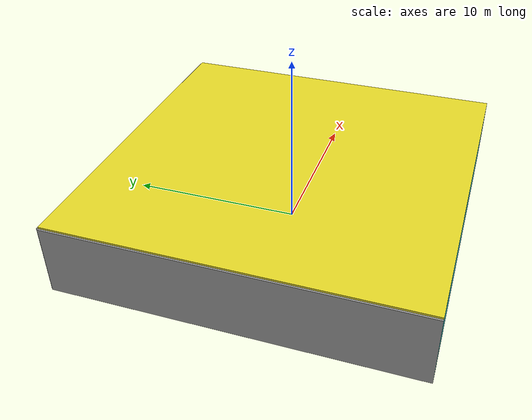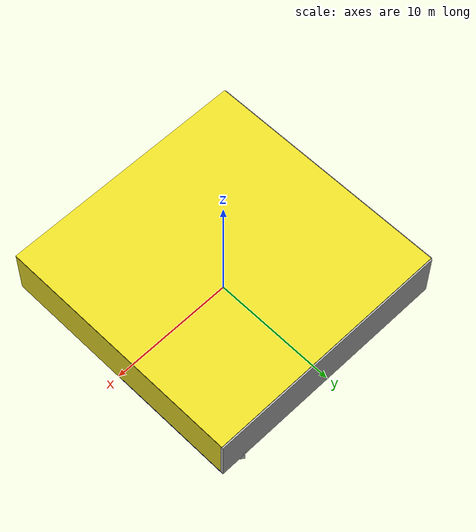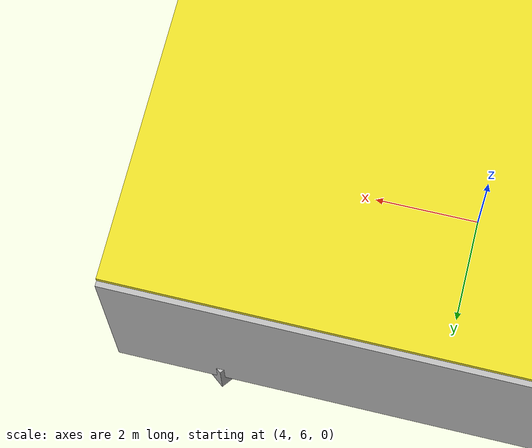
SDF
<sdf version="1.4">
 <world name="default">
  <physics type="ode">
   <max_step_size>0.001</max_step_size>
   <real_time_factor>1</real_time_factor>
   <real_time_update_rate>1000</real_time_update_rate>
   <gravity>0 0 -9.8</gravity>
  </physics>
  <scene><ambient>0.4 0.4 0.4 1</ambient><background>0.7 0.7 0.7 1</background><shadows>1</shadows></scene>
  <model name="Surrounding">
   <static>1</static>
   <link name="Ceiling">
    <collision name="Ceiling_Collision"><geometry><box><size>20 20 0.1</size></box></geometry></collision>
    <visual name="Ceiling_Visual">
     <geometry><box><size>20 20 0.1</size></box></geometry>
     <material>
      <script><uri>file://media/materials/scripts/gazebo.material</uri><name>Gazebo/YellowGlow</name></script>
     </material>
    </visual>
    <pose>0 0 4.05 0 0 0</pose>
   </link>
   <link name="Wall_South">
    <collision name="Wall_South_Collision">
     <geometry><box><size>20 0 4</size></box></geometry>
     <pose>0 0 2 0 -0 0</pose>
    </collision>
    <visual name="Wall_South_Visual">
     <pose>0 0 2 0 -0 0</pose>
     <geometry><box><size>20 0 4</size></box></geometry>
     <material>
      <script><uri>file://media/materials/scripts/gazebo.material</uri><name>Gazebo/TurquoiseGlow</name></script>
     </material>
    </visual>
    <velocity_decay><linear>0</linear><angular>0</angular></velocity_decay>
    <pose>0 -10 0 0 -0 0</pose>
   </link>
   <link name="Wall_East">
    <collision name="Wall_21_Collision">
     <geometry><box><size>20 0 4</size></box></geometry>
     <pose>0 0 2 0 -0 0</pose>
    </collision>
    <visual name="Wall_21_Visual">
     <pose>0 0 2 0 -0 0</pose>
     <geometry><box><size>20 0 4</size></box></geometry>
     <material>
      <script><uri>file://media/materials/scripts/gazebo.material</uri><name>Gazebo/YellowGlow</name></script>
     </material>
    </visual>
    <velocity_decay><linear>0</linear><angular>0</angular></velocity_decay>
    <pose>10 0 0 0 -0 1.5708</pose>
   </link>
   <link name="Wall_North">
    <collision name="Wall_22_Collision">
     <geometry><box><size>20 0.2 4</size></box></geometry>
     <pose>0 0 2 0 -0 0</pose>
    </collision>
    <visual name="Wall_22_Visual">
     <pose>0 0 2 0 -0 0</pose>
     <geometry><box><size>20 0.2 4</size></box></geometry>
     <material>
      <script><uri>file://media/materials/scripts/gazebo.material</uri><name>Gazebo/CloudySky</name></script>
     </material>
    </visual>
    <velocity_decay><linear>0</linear><angular>0</angular></velocity_decay>
    <pose>0 10 0 0 -0 0</pose>
   </link>
   <link name="Wall_West">
    <collision name="Wall_23_Collision">
     <geometry><box><size>20 0.2 4</size></box></geometry>
     <pose>0 0 2 0 -0 0</pose>
    </collision>
    <visual name="Wall_23_Visual">
     <pose>0 0 2 0 -0 0</pose>
     <geometry><box><size>20 0.2 4</size></box></geometry>
     <material>
      <script><uri>file://media/materials/scripts/gazebo.material</uri><name>Gazebo/GreyGradientSky</name></script>
     </material>
    </visual>
    <velocity_decay><linear>0</linear><angular>0</angular></velocity_decay>
    <pose>-10 0 0 0 0 -1.5708</pose>
   </link>
   <link name="Ground_link">
    <collision name="collision">
     <pose>0 0 .05 0 -0 0</pose>
     <geometry><box><size>20 20 0.1</size></box></geometry>
    </collision>
    <visual name="visual">
     <pose>0 0 .05 0 -0 0</pose>
     <geometry><box><size>20 20 0.1</size></box></geometry>
     <material>
      <script><uri>file://media/materials/scripts/gazebo.material</uri><name>Gazebo/Blue</name></script>
     </material>
    </visual>
   </link>
   <static>1</static>
  </model>
  <spherical_coordinates>
   <surface_model>EARTH_WGS84</surface_model>
   <latitude_deg>0</latitude_deg>
   <longitude_deg>0</longitude_deg>
   <elevation>0</elevation>
   <heading_deg>0</heading_deg>
  </spherical_coordinates>
  <light name="lightball_0" type="diffuse">
   <diffuse>0.8 0.8 0.8 1</diffuse>
   <specular>0.2 0.2 0.2 1</specular>
   <attenuation>
    <range>100</range>
    <constant>0.7</constant>
    <linear>0.01</linear>
    <quadratic>0.001</quadratic>
   </attenuation>
   <direction>-0.5 0.1 -0.9</direction>
   <pose>-1.1899789465 -3.4966618632 1.70012894379 0 0 0</pose>
  </light>
  <light name="lightball_1" type="diffuse">
   <diffuse>0.8 0.8 0.8 1</diffuse>
   <specular>0.2 0.2 0.2 1</specular>
   <attenuation>
    <range>100</range>
    <constant>0.7</constant>
    <linear>0.01</linear>
    <quadratic>0.001</quadratic>
   </attenuation>
   <direction>-0.5 0.1 -0.9</direction>
   <pose>4.09442463882 4.07730560001 1.49283051403 0 0 0</pose>
  </light>
  <light name="lightball_2" type="diffuse">
   <diffuse>0.8 0.8 0.8 1</diffuse>
   <specular>0.2 0.2 0.2 1</specular>
   <attenuation>
    <range>100</range>
    <constant>0.7</constant>
    <linear>0.01</linear>
    <quadratic>0.001</quadratic>
   </attenuation>
   <direction>-0.5 0.1 -0.9</direction>
   <pose>-9.75856510427 -7.36085771769 3.30519561679 0 0 0</pose>
  </light>
  <light name="lightball_3" type="diffuse">
   <diffuse>0.8 0.8 0.8 1</diffuse>
   <specular>0.2 0.2 0.2 1</specular>
   <attenuation>
    <range>100</range>
    <constant>0.7</constant>
    <linear>0.01</linear>
    <quadratic>0.001</quadratic>
   </attenuation>
   <direction>-0.5 0.1 -0.9</direction>
   <pose>-7.70311928489 -9.98078458164 2.61647930714 0 0 0</pose>
  </light>
  <light name="lightball_4" type="diffuse">
   <diffuse>0.8 0.8 0.8 1</diffuse>
   <specular>0.2 0.2 0.2 1</specular>
   <attenuation>
    <range>100</range>
    <constant>0.7</constant>
    <linear>0.01</linear>
    <quadratic>0.001</quadratic>
   </attenuation>
   <direction>-0.5 0.1 -0.9</direction>
   <pose>3.33926932475 5.05762377035 3.11782687786 0 0 0</pose>
  </light>
  <light name="lightball_5" type="diffuse">
   <diffuse>0.8 0.8 0.8 1</diffuse>
   <specular>0.2 0.2 0.2 1</specular>
   <attenuation>
    <range>100</range>
    <constant>0.7</constant>
    <linear>0.01</linear>
    <quadratic>0.001</quadratic>
   </attenuation>
   <direction>-0.5 0.1 -0.9</direction>
   <pose>1.32541977157 -5.66977081528 2.70351924082 0 0 0</pose>
  </light>
  <light name="lightball_6" type="diffuse">
   <diffuse>0.8 0.8 0.8 1</diffuse>
   <specular>0.2 0.2 0.2 1</specular>
   <attenuation>
    <range>100</range>
    <constant>0.7</constant>
    <linear>0.01</linear>
    <quadratic>0.001</quadratic>
   </attenuation>
   <direction>-0.5 0.1 -0.9</direction>
   <pose>-0.84053811585 9.660268377 1.47314804381 0 0 0</pose>
  </light>
  <light name="lightball_7" type="diffuse">
   <diffuse>0.8 0.8 0.8 1</diffuse>
   <specular>0.2 0.2 0.2 1</specular>
   <attenuation>
    <range>100</range>
    <constant>0.7</constant>
    <linear>0.01</linear>
    <quadratic>0.001</quadratic>
   </attenuation>
   <direction>-0.5 0.1 -0.9</direction>
   <pose>9.78490605011 -8.01698087487 1.34674330413 0 0 0</pose>
  </light>
  <light name="lightball_8" type="diffuse">
   <diffuse>0.8 0.8 0.8 1</diffuse>
   <specular>0.2 0.2 0.2 1</specular>
   <attenuation>
    <range>100</range>
    <constant>0.7</constant>
    <linear>0.01</linear>
    <quadratic>0.001</quadratic>
   </attenuation>
   <direction>-0.5 0.1 -0.9</direction>
   <pose>1.18785889924 8.50722114337 3.16516641718 0 0 0</pose>
  </light>
  <light name="lightball_9" type="diffuse">
   <diffuse>0.8 0.8 0.8 1</diffuse>
   <specular>0.2 0.2 0.2 1</specular>
   <attenuation>
    <range>100</range>
    <constant>0.7</constant>
    <linear>0.01</linear>
    <quadratic>0.001</quadratic>
   </attenuation>
   <direction>-0.5 0.1 -0.9</direction>
   <pose>-2.11902969914 0.911674533694 3.19382375614 0 0 0</pose>
  </light>
  <light name="lightball_10" type="diffuse">
   <diffuse>0.8 0.8 0.8 1</diffuse>
   <specular>0.2 0.2 0.2 1</specular>
   <attenuation>
    <range>100</range>
    <constant>0.7</constant>
    <linear>0.01</linear>
    <quadratic>0.001</quadratic>
   </attenuation>
   <direction>-0.5 0.1 -0.9</direction>
   <pose>-5.61284962875 3.17604114393 0.578926857826 0 0 0</pose>
  </light>
  <include><uri>model://cabinet</uri><pose>-4.17326848622 -0.900352510733 0 0 0 0.995128068284</pose></include>
  <include><uri>model://table</uri><pose>1.22129680436 1.95290542667 0 0 0 2.34179396352</pose></include>
  <include>
   <uri>model://construction_cone</uri>
   <pose>4.56796321235 1.17715985771 0 0 0 0.626245711032</pose>
  </include>
  <include><uri>model://cabinet</uri><pose>7.3808101097 1.78865873894 0 0 0 0.0198850244708</pose></include>
  <include>
   <uri>model://textured_shapes</uri>
   <pose>7.19034826471 8.27907008341 0 0 0 2.4893940437</pose>
  </include>
 </world>
</sdf>

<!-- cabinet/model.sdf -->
<sdf version="1.5">
  <model name="cabinet">
    <static>true</static>
    <link name="cabinet_bottom_plate">
      <inertial>
        <pose>0 0 -1 0 0 0</pose>
        <inertia>
          <ixx>2.050000</ixx>
          <ixy>0</ixy>
          <ixz>0</ixz>
          <iyy>2.050000</iyy>
          <iyz>0</iyz>
          <izz>2.050000</izz>
        </inertia>
        <mass>25.000000</mass>
      </inertial>
      <collision name="cabinet_bottom_plate_geom">
        <pose>0 0 0.010000 0 0 0</pose>
        <geometry>
          <box>
            <size>0.450000 0.450000 0.020000</size>
          </box>
        </geometry>
      </collision>
      <visual name="cabinet_bottom_plate_geom_visual">
        <pose>0 0 0.010000 0 0 0</pose>
        <geometry>
          <box>
            <size>0.450000 0.450000 0.020000</size>
          </box>
        </geometry>
        <material>
          <script>
            <uri>model://media/materials/scripts/gazebo.material</uri>
            <name>Gazebo/Wood</name>
          </script>
        </material>
      </visual>
      <collision name="cabinet_bottom_plate_geom_cabinet_back_plate">
        <pose>0.235000 0 0.510000 0 0 0</pose>
        <geometry>
          <box>
            <size>0.020000 0.450000 1.020000</size>
          </box>
        </geometry>
      </collision>
      <visual name="cabinet_bottom_plate_geom_cabinet_back_plate_visual">
        <pose>0.235000 0 0.510000 0 0 0</pose>
        <geometry>
          <box>
            <size>0.020000 0.450000 1.020000</size>
          </box>
        </geometry>
        <material>
          <script>
            <uri>model://media/materials/scripts/gazebo.material</uri>
            <name>Gazebo/Wood</name>
          </script>
        </material>
      </visual>
      <collision name="cabinet_bottom_plate_geom_cabinet_left_plate">
        <pose>0 0.235000 0.510000 0 0 0</pose>
        <geometry>
          <box>
            <size>0.450000 0.020000 1.020000</size>
          </box>
        </geometry>
      </collision>
      <visual name="cabinet_bottom_plate_geom_cabinet_left_plate_visual">
        <pose>0 0.235000 0.510000 0 0 0</pose>
        <geometry>
          <box>
            <size>0.450000 0.020000 1.020000</size>
          </box>
        </geometry>
        <material>
          <script>
            <uri>model://media/materials/scripts/gazebo.material</uri>
            <name>Gazebo/Wood</name>
          </script>
        </material>
      </visual>
      <collision name="cabinet_bottom_plate_geom_cabinet_middle_plate">
        <pose>0 0 0.510000 0 0 0</pose>
        <geometry>
          <box>
            <size>0.450000 0.450000 0.020000</size>
          </box>
        </geometry>
      </collision>
      <visual name="cabinet_bottom_plate_geom_cabinet_middle_plate_visual">
        <pose>0 0 0.510000 0 0 0</pose>
        <geometry>
          <box>
            <size>0.450000 0.450000 0.020000</size>
          </box>
        </geometry>
        <material>
          <script>
            <uri>model://media/materials/scripts/gazebo.material</uri>
            <name>Gazebo/Wood</name>
          </script>
        </material>
      </visual>
      <collision name="cabinet_bottom_plate_geom_cabinet_right_plate">
        <pose>0 -0.235000 0.510000 0 0 0</pose>
        <geometry>
          <box>
            <size>0.450000 0.020000 1.020000</size>
          </box>
        </geometry>
      </collision>
      <visual name="cabinet_bottom_plate_geom_cabinet_right_plate_visual">
        <pose>0 -0.235000 0.510000 0 0 0</pose>
        <geometry>
          <box>
            <size>0.450000 0.020000 1.020000</size>
          </box>
        </geometry>
        <material>
          <script>
            <uri>model://media/materials/scripts/gazebo.material</uri>
            <name>Gazebo/Wood</name>
          </script>
        </material>
      </visual>
      <collision name="cabinet_bottom_plate_geom_cabinet_top_plate">
        <pose>0 0 1.010000 0 0 0</pose>
        <geometry>
          <box>
            <size>0.450000 0.450000 0.020000</size>
          </box>
        </geometry>
      </collision>
      <visual name="cabinet_bottom_plate_geom_cabinet_top_plate_visual">
        <pose>0 0 1.010000 0 0 0</pose>
        <geometry>
          <box>
            <size>0.450000 0.450000 0.020000</size>
          </box>
        </geometry>
        <material>
          <script>
            <uri>model://media/materials/scripts/gazebo.material</uri>
            <name>Gazebo/Wood</name>
          </script>
        </material>
      </visual>
    </link>
  </model>
</sdf>

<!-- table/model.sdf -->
<sdf version="1.5">
  <model name="table">
    <static>true</static>
    <link name="link">
      <collision name="surface">
        <pose>0 0 1.0 0 0 0</pose>
        <geometry>
          <box>
            <size>1.5 0.8 0.03</size>
          </box>
        </geometry>
        <surface>
          <friction>
            <ode>
              <mu>0.6</mu>
              <mu2>0.6</mu2>
            </ode>
          </friction>
        </surface>
      </collision>
      <visual name="visual1">
        <pose>0 0 1.0 0 0 0</pose>
        <geometry>
          <box>
            <size>1.5 0.8 0.03</size>
          </box>
        </geometry>
        <material>
          <script>
            <uri>model://media/materials/scripts/gazebo.material</uri>
            <name>Gazebo/Wood</name>
          </script>
        </material>
      </visual>
      <collision name="front_left_leg">
        <pose>0.68 0.38 0.5 0 0 0</pose>
        <geometry>
          <cylinder>
            <radius>0.02</radius>
            <length>1.0</length>
          </cylinder>
        </geometry>
      </collision>
      <visual name="front_left_leg">
        <pose>0.68 0.38 0.5 0 0 0</pose>
        <geometry>
          <cylinder>
            <radius>0.02</radius>
            <length>1.0</length>
          </cylinder>
        </geometry>
        <material>
          <script>
            <uri>model://media/materials/scripts/gazebo.material</uri>
            <name>Gazebo/Grey</name>
          </script>
        </material>
      </visual>
      <collision name="front_right_leg">
        <pose>0.68 -0.38 0.5 0 0 0</pose>
        <geometry>
          <cylinder>
            <radius>0.02</radius>
            <length>1.0</length>
          </cylinder>
        </geometry>
      </collision>
      <visual name="front_right_leg">
        <pose>0.68 -0.38 0.5 0 0 0</pose>
        <geometry>
          <cylinder>
            <radius>0.02</radius>
            <length>1.0</length>
          </cylinder>
        </geometry>
        <material>
          <script>
            <uri>model://media/materials/scripts/gazebo.material</uri>
            <name>Gazebo/Grey</name>
          </script>
        </material>
      </visual>
      <collision name="back_right_leg">
        <pose>-0.68 -0.38 0.5 0 0 0</pose>
        <geometry>
          <cylinder>
            <radius>0.02</radius>
            <length>1.0</length>
          </cylinder>
        </geometry>
      </collision>
      <visual name="back_right_leg">
        <pose>-0.68 -0.38 0.5 0 0 0</pose>
        <geometry>
          <cylinder>
            <radius>0.02</radius>
            <length>1.0</length>
          </cylinder>
        </geometry>
        <material>
          <script>
            <uri>model://media/materials/scripts/gazebo.material</uri>
            <name>Gazebo/Grey</name>
          </script>
        </material>
      </visual>
      <collision name="back_left_leg">
        <pose>-0.68 0.38 0.5 0 0 0</pose>
        <geometry>
          <cylinder>
            <radius>0.02</radius>
            <length>1.0</length>
          </cylinder>
        </geometry>
      </collision>
      <visual name="back_left_leg">
        <pose>-0.68 0.38 0.5 0 0 0</pose>
        <geometry>
          <cylinder>
            <radius>0.02</radius>
            <length>1.0</length>
          </cylinder>
        </geometry>
        <material>
          <script>
            <uri>model://media/materials/scripts/gazebo.material</uri>
            <name>Gazebo/Grey</name>
          </script>
        </material>
      </visual>
    </link>
  </model>
</sdf>

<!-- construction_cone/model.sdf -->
<sdf version="1.5">
  <model name="Construction Cone">
    <link name="link">
      <collision name="collision">
        <geometry>
          <mesh>
            <scale>10 10 10</scale>
            <uri>file://isr-testbed/construction_cone/meshes/construction_cone.dae</uri>
          </mesh>
        </geometry>
      </collision>
      <visual name="visual">
        <geometry>
          <mesh>
            <scale>10 10 10</scale>
            <uri>file://isr-testbed/construction_cone/meshes/construction_cone.dae</uri>
          </mesh>
        </geometry>
      </visual>
    </link>
  </model>
</sdf>

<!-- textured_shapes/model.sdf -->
<sdf version="1.6">
  <model name="textured_shapes">
    <pose>0 0 0.5 0 0 0</pose>
    <link name="box">
      <pose>0 -1.5 0 0 0 0</pose>
      <collision name="collision">
        <geometry>
          <box>
            <size>1 1 1</size>
          </box>
        </geometry>
      </collision>
      <visual name="visual">
        <geometry>
          <box>
            <size>1 1 1</size>
          </box>
        </geometry>
        <material>
          <script>
            <uri>model://../model_source/models/textured_shapes/materials/scripts</uri>
            <uri>model://../model_source/models/textured_shapes/materials/textures</uri>
            <name>TexturedShape/Squares</name>
          </script>
        </material>
      </visual>
    </link>
    <link name="sphere">
      <collision name="collision">
        <geometry>
          <sphere>
            <radius>0.5</radius>
          </sphere>
        </geometry>
      </collision>
      <visual name="visual">
        <geometry>
          <sphere>
            <radius>0.5</radius>
          </sphere>
        </geometry>
        <material>
          <script>
            <uri>model://../model_source/models/textured_shapes/materials/scripts</uri>
            <uri>model://../model_source/models/textured_shapes/materials/textures</uri>
            <name>TexturedShape/Squares</name>
          </script>
        </material>
      </visual>
    </link>
    <link name="cylinder">
      <pose>0 1.5 0 0 0 0</pose>
      <collision name="collision">
        <geometry>
          <cylinder>
            <radius>0.5</radius>
            <length>1</length>
          </cylinder>
        </geometry>
      </collision>
      <visual name="visual">
        <geometry>
          <cylinder>
            <radius>0.5</radius>
            <length>1</length>
          </cylinder>
        </geometry>
        <material>
          <script>
            <uri>model://../model_source/models/textured_shapes/materials/scripts</uri>
            <uri>model://../model_source/models/textured_shapes/materials/textures</uri>
            <name>TexturedShape/Squares</name>
          </script>
        </material>
      </visual>
    </link>
  </model>
</sdf>
